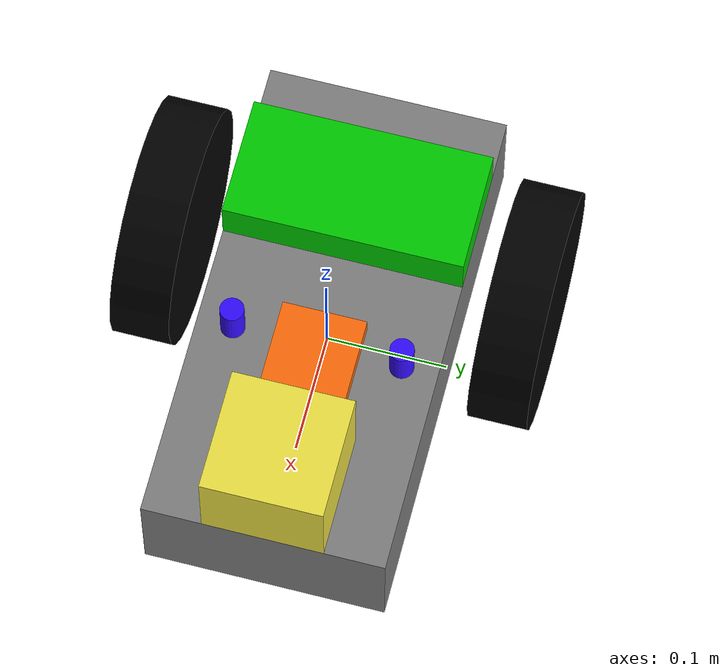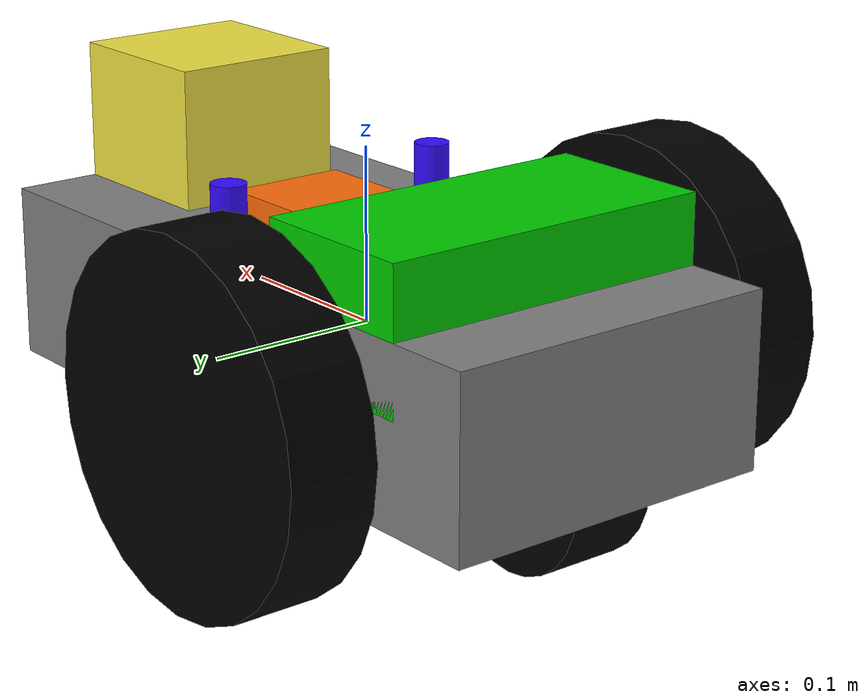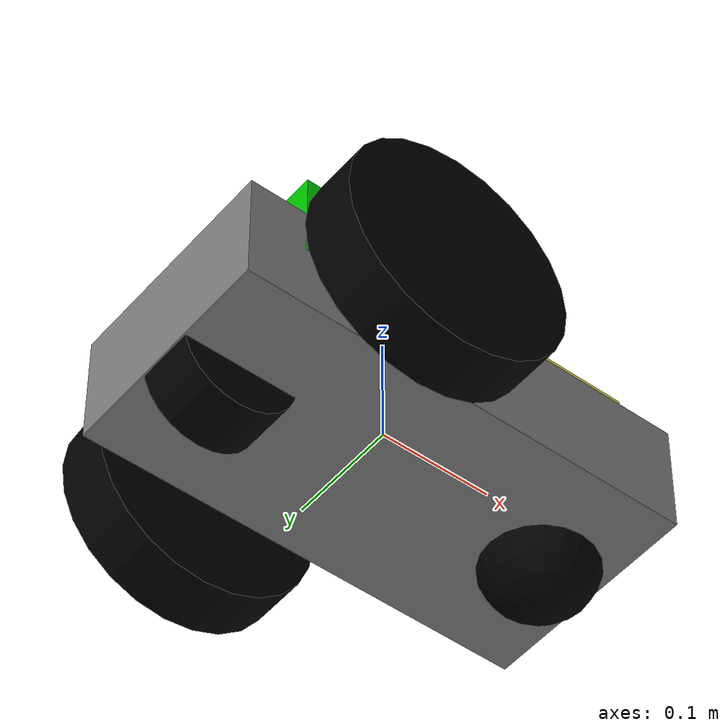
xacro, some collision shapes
<?xml version='1.0'?>

<robot name="st" xmlns:xacro="http://www.ros.org/wiki/xacro">

  <xacro:include filename="$(find mybot)/urdf/st.gazebo"/>
  <xacro:include filename="$(find mybot)/urdf/imu_plugin.xacro"/>
  <link name='base_link'>
    <pose>0 0 0.1 0 0 0</pose>

    <inertial>
      <mass value="5.0"/>
      <origin xyz="0.0 0 0.1" rpy=" 0 0 0"/>
      <inertia
          ixx="0.1" ixy="0" ixz="0"
          iyy="0.1" iyz="0"
          izz="0.1"
      />
    </inertial>

    <collision name='collision'>
      <geometry>
        <box size=".4 .2 .1"/>
      </geometry>
    </collision>

    <visual name='chassis_visual'>
      <origin xyz="0 0 0" rpy=" 0 0 0"/>
      <geometry>
        <box size=".4 .2 .1"/>
      </geometry>
        <material name="grey">
    <color rgba="0.5 0.5 0.5 1.0"/>
  </material>
    </visual>

    <visual name='chassis_visual_top'>
      <origin xyz="-0.1 0 0.05" rpy=" 0 0 0"/>
      <geometry>
        <box size=".1 .2 .08"/>
      </geometry>
        <material name="green">
    <color rgba="0.0 0.8 0.0 1.0"/>
    </material>
    </visual>

    <collision name='caster_collision'>
      <origin xyz="-0.15 0 -0.04" rpy=" 0 1.5708 -1.5708"/>
      <geometry>
        <cylinder radius="0.05" length="0.05"/>
      </geometry>
    </collision>

    <visual name='caster_visual'>
      <origin xyz="-0.15 0 -0.04" rpy=" 0 1.5708 -1.5708"/>
      <geometry>
        <cylinder radius="0.05" length="0.05"/>
      </geometry>
      <material name="black">
    <color rgba="0.0 0.0 0.0 1.0"/>
  </material>
    </visual>

    <collision name='caster_front_collision'>
      <origin xyz="0.15 0 -0.04" rpy=" 0 0 0"/>
      <geometry>
        <sphere radius="0.05"/>
      </geometry>
    </collision>

    <visual name='caster_front_visual'>
      <origin xyz="0.15 0 -0.04" rpy=" 0 0 0"/>
      <geometry>
        <sphere radius="0.05"/>
      </geometry>
        <material name="black">
    <color rgba="0.0 0.0 0.0 1.0"/>
  </material>
  </visual>
  </link>

  <link name="left_wheel">
    <!--origin xyz="0.1 0.13 0.1" rpy="0 1.5707 1.5707"/-->
    <collision name="collision">
      <origin xyz="0 0 0" rpy="0 1.5707 1.5707"/>
      <geometry>
        <cylinder radius="0.1" length="0.05"/>
      </geometry>
    </collision>
    <visual name="left_wheel_visual">
      <origin xyz="0 0 0" rpy="0 1.5707 1.5707"/>
      <geometry>
        <cylinder radius="0.1" length="0.05"/>
      </geometry>
    <material name="black">
        <color rgba="0.0 0.0 0.0 1.0"/>
    </material>
    </visual>
    <inertial>
      <origin xyz="0 0 0" rpy="0 1.5707 1.5707"/>
      <mass value="5"/>
      <inertia
        ixx=".1" ixy="0.0" ixz="0.0"
        iyy=".1" iyz="0.0"
        izz=".1"/>
    </inertial>
  </link>

  <link name="right_wheel">
    <!--origin xyz="0.1 -0.13 0.1" rpy="0 1.5707 1.5707"/-->
    <collision name="collision">
      <origin xyz="0 0 0" rpy="0 1.5707 1.5707"/>
      <geometry>
        <cylinder radius="0.1" length="0.05"/>
      </geometry>
    </collision>
    <visual name="right_wheel_visual">
      <origin xyz="0 0 0" rpy="0 1.5707 1.5707"/>
      <geometry>
        <cylinder radius="0.1" length="0.05"/>
      </geometry>
        <material name="black">
            <color rgba="0.0 0.0 0.0 1.0"/>
        </material>
    </visual>
    <inertial>
      <origin xyz="0 0 0" rpy="0 1.5707 1.5707"/>
      <mass value="5"/>
      <inertia
        ixx=".1" ixy="0.0" ixz="0.0"
        iyy=".1" iyz="0.0"
        izz=".1"/>
    </inertial>
  </link>

  <joint type="continuous" name="left_wheel_hinge">
    <origin xyz="-0.07 0.15 0" rpy="0 0 0"/>
    <!--origin xyz="0.1 0.13 0" rpy="0 1.5707 1.5707"/-->
    <child link="left_wheel"/>
    <parent link="base_link"/>
    <axis xyz="0 1 0" rpy="0 0 0"/>
    <joint_properties damping="0.0" friction="0.0"/>
  </joint>

  <joint type="continuous" name="right_wheel_hinge">
    <origin xyz="-0.07 -0.15 0" rpy="0 0 0"/>
    <!--origin xyz="0.1 -0.13 0" rpy="0 1.5707 1.5707"/-->
    <child link="right_wheel"/>
    <parent link="base_link"/>
    <axis xyz="0 1 0" rpy="0 0 0"/>
    <joint_properties damping="0.0" friction="0.0"/>
  </joint>

  <!-- Hokuyo Laser -->
  <link name="hokuyo_link">
    <collision>
      <origin xyz="0 0 0" rpy="0 0 0"/>
      <geometry>
        <box size="0.1 0.1 0.1"/>
      </geometry>
    </collision>

    <visual>
      <origin xyz="0 0 0" rpy="0 0 0"/>
      <geometry>
        <mesh filename="package://mybot/meshes/hokuyo.dae"/>
      </geometry>
    </visual>

    <inertial>
      <mass value="1e-5" />
      <origin xyz="0 0 0" rpy="0 0 0"/>
      <inertia ixx="1e-6" ixy="0" ixz="0" iyy="1e-6" iyz="0" izz="1e-6" />
    </inertial>
  </link>

  <joint name="hokuyo_joint" type="fixed">
    <axis xyz="0 1 0" />
    <origin xyz="0.15 0 0.08" rpy="0 0 0"/>
    <parent link="base_link"/>
    <child link="hokuyo_link"/>
  </joint>

 <!-- imu Link -->
  <link name="imu_sensor">
    <visual>
      <origin xyz="0.04 0 0.05" rpy="0 0 0"/>
      <geometry>
        <box size="0.07 0.07 0.03"/>
      </geometry>
      <material name="orange"/>
    </visual>

    <inertial>
      <origin xyz="0 0 1" rpy="0 0 0"/>
      <mass value="1"/>
      <inertia
        ixx="1.0" ixy="0.0" ixz="0.0"
        iyy="1.0" iyz="0.0"
        izz="1.0"/>
    </inertial>
  </link>
  <joint name="sensor_joint" type="fixed">
    <parent link="base_link"/>
    <child link="imu_sensor"/>
  </joint>

<!-- gps Link -->
  <link name="gps_link">

    <visual name='gps_r'>
    <origin xyz="0.03 -0.07 0.06" rpy="0 3.14 1.5708"/>
      <geometry>
        <cylinder radius="0.01" length="0.05"/>
      </geometry>
      <material name="blue">
        <color rgba="${50/255} ${10/255} ${255/255} 1.0"/>
      </material>
    </visual>

    <visual name = "gps_l">
      <origin xyz="0.03 0.07 0.06" rpy="0 3.14 1.5708"/>
      <geometry>
        <cylinder radius="0.01" length="0.05"/>
      </geometry>
      <material name="blue">
        <color rgba="${50/255} ${10/255} ${255/255} 1.0"/>
      </material>
    </visual>

    <inertial>
      <origin xyz="0 0 1" rpy="0 0 0"/>
      <mass value="1"/>
      <inertia
        ixx="1.0" ixy="0.0" ixz="0.0"
        iyy="1.0" iyz="0.0"
        izz="1.0"/>
    </inertial>
  </link>

  <joint name="sensor_gps_joint" type="fixed">
    <parent link="base_link"/>
    <child link="gps_link"/>
  </joint>

  <material name="orange">
    <color rgba="${255/255} ${108/255} ${10/255} 1.0"/>
  </material>

</robot>
